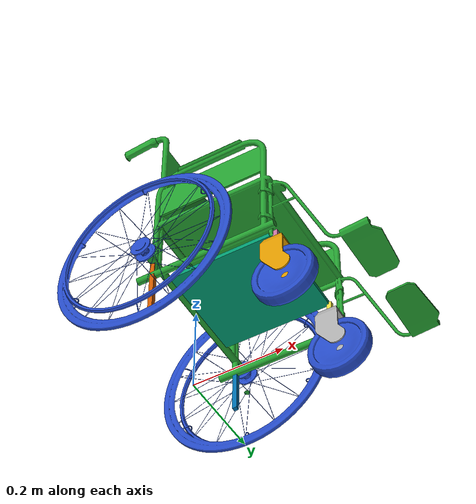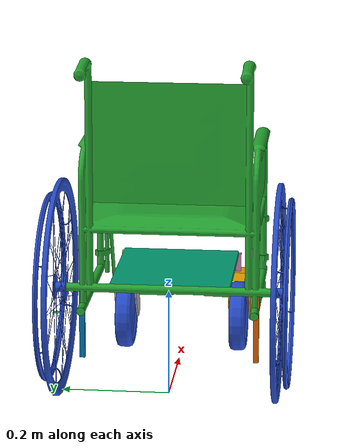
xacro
<?xml version='1.0'?>

<robot name="wheelchair" xmlns:xacro="http://www.ros.org/wiki/xacro" >

  <xacro:property name="legs_width" value="0.01" />
  <xacro:property name="legs_length" value="0.01" />
  <xacro:property name="legs_height" value="0.0354" />
  <xacro:property name="legs_weight" value="0.25" />

  <xacro:property name="main_wheel_length" value="0.0356884" />
  <xacro:property name="main_wheel_radius" value="0.201784" />
  <xacro:property name="main_wheel_weight" value="3.0" />

  <xacro:property name="small_wheel_radius" value="0.068" />
  <xacro:property name="small_wheel_length" value="0.032" />
  <xacro:property name="small_wheel_weight" value="1.5" />

  <xacro:property name="chair_width" value="${2*main_wheel_radius - 0.18}" /> <!-- From front wheel right joint to front wheel left joint -->
  <xacro:property name="chair_length" value="${3/2*main_wheel_radius - 0.052}" /> 	 <!-- From front wheel joint to back wheel joint -->
  <xacro:property name="chair_height" value="0.01" /> 						 <!-- From front wheel joint to head rest -->
  <xacro:property name="chair_weight" value="${3.0+70.0}" />

  <xacro:property name="axle_width" value="0.01" />
  <xacro:property name="axle_length" value="${2*main_wheel_radius}"/>
  <xacro:property name="axle_height" value="0.01" />
  <xacro:property name="axle_weight" value="2.0" />

  <xacro:include filename="$(find wheelchair_description)/urdf/wheelchair.gazebo" />
  <xacro:include filename="$(find wheelchair_description)/urdf/materials.xacro" />
  <xacro:include filename="$(find wheelchair_description)/urdf/macros.xacro" />

  <link name='footprint'>
    <pose xyz="1 0 0" rpy=" 0 0 0"/>
    <visual>
      <origin xyz="0 0 0" rpy=" 0 0 0"/>
    <geometry>
      <box size="0.001 0.001 0.001"/>
    </geometry>
    </visual>
    <visual>
      <origin xyz="0 0 0" rpy="0 0 -3.14"/>
      <geometry>
         <mesh filename="package://wheelchair_description/meshes/wheelchair_chasis.stl" scale="0.01 0.01 0.01"/>
      </geometry>
  </visual>
  </link>

  <link name='axle'>
    <inertial>
      <origin xyz="0 0 0" rpy=" 0 0 0"/>
      <mass value="${axle_weight}"/>
      <box_inertia m="${axle_weight}" x="${axle_width}" y="${axle_length}" z ="${axle_height}" />
    </inertial>
    <collision name='collision'>
      <origin xyz="0 0 0" rpy=" 0 0 0"/>
      <geometry>
        <box size="${axle_width} ${axle_length} ${axle_height}"/>
      </geometry>
    </collision>

    <visual>
      <origin xyz="0 0 0" rpy=" 0 0 0"/>
      <geometry>
        <box size="${axle_width} ${axle_length} ${axle_height}"/>
      </geometry>
    </visual>
  </link>

  <link_joint parent="footprint" child ="axle" xyz="0 0 ${main_wheel_radius}" rpy="0 0 0" type="fixed"/>

  <chassis name="base" xyz="${chair_length/2} 0 0" rpy="0 0 0" m="${chair_weight}" chassisLength="${chair_length}" chassisWidth="${chair_width}" chassisHeight="${chair_height}"/>
  <link_joint parent="axle" child ="base" xyz="0 0 0" rpy="0 0 0" type="fixed"/>

  <chassis name="front_left_leg" xyz="0 0 ${-legs_height/2}" rpy="0 0 0" m="${legs_weight}" chassisLength="${legs_length}" chassisWidth="${legs_width}" chassisHeight="${legs_height}"/>
  <link_joint parent="base" child ="front_left_leg" xyz="${chair_length} ${chair_width/2} 0" rpy="0 0 0" type="fixed"/>
   <chassis name="rear_left_leg" xyz="0 0 ${-(legs_height + 0.1)/2}" rpy="0 0 0" m="${legs_weight}" chassisLength="${legs_length}" chassisWidth="${legs_width}" chassisHeight="${legs_height + 0.1}"/>
  <link_joint parent="base" child ="rear_left_leg" xyz="0 ${chair_width/2 + 0.05} 0" rpy="0 0 0" type="fixed"/>
<chassis name="rear_right_leg" xyz="0 0 ${-(legs_height + 0.1)/2}" rpy="0 0 0" m="${legs_weight}" chassisLength="${legs_length}" chassisWidth="${legs_width}" chassisHeight="${legs_height +0.1}"/>
  <link_joint parent="base" child ="rear_right_leg" xyz="0 ${-chair_width/2 - 0.05} 0" rpy="0 0 0" type="fixed"/>

  <chassis name="front_right_leg" xyz="0 0 ${-legs_height/2}" rpy="0 0 0" m="${legs_weight}" chassisLength="${legs_length}" chassisWidth="${legs_width}" chassisHeight="${legs_height}"/>
  <link_joint parent="base" child ="front_right_leg" xyz="${chair_length} ${-chair_width/2} 0" rpy="0 0 0" type="fixed"/>

  <wheel  lr="front_left_leg_rev" tY="0.02" xyz=" 0 0 0" rpy="0 0 0" wheelWidth="${0.01}" wheelRadius="${legs_width}" wheelMass="${legs_weight}" meshFile="wheelchair_wheel_rev"/>
  <wheel_joint parent="front_left_leg" child ="front_left_leg_rev" xyz="0 0 ${-legs_height}" rpy="0 0 0" axis="0 0 1"/>

  <wheel  lr="front_right_leg_rev" tY="0.02" xyz=" 0 0 0" rpy="0 0 0" wheelWidth="${0.01}" wheelRadius="${legs_width}" wheelMass="${legs_weight}" meshFile="wheelchair_wheel_rev"/>
  <wheel_joint parent="front_right_leg" child ="front_right_leg_rev" xyz="0 0 ${-legs_height}" rpy="0 0 0" axis="0 0 1"/>

  <wheel  lr="rear_left_wheel" tY="0.02" xyz=" 0 0 0" rpy="${-pi/2} 0 0" wheelWidth="${main_wheel_length}" wheelRadius="${main_wheel_radius}" wheelMass="${main_wheel_weight}" meshFile="wheelchair_wheel"/>
  <wheel_joint parent="axle" child ="rear_left_wheel" xyz="0 ${main_wheel_radius} 0" rpy="0 0 0" axis="0 1 0"/>

  <wheel  lr="rear_right_wheel" tY="0.02" xyz=" 0 0 0" rpy="${pi/2} 0 0" wheelWidth="${main_wheel_length}" wheelRadius="${main_wheel_radius}" wheelMass="${main_wheel_weight}" meshFile="wheelchair_wheel"/>
  <wheel_joint parent="axle" child ="rear_right_wheel" xyz="0 ${-main_wheel_radius} 0" rpy="0 0 0" axis="0 1 0"/>

  <wheel  lr="front_left_wheel" tY="0.001" xyz=" 0 0 0" rpy="${pi/2} 0 0" wheelWidth="${small_wheel_length}" wheelRadius="${small_wheel_radius}" wheelMass="${small_wheel_weight}" meshFile="wheelchair_wheel_small"/>
  <wheel_joint parent="front_left_leg_rev" child ="front_left_wheel" xyz="0.017 0 ${-2*small_wheel_radius+0.0377}" rpy="0 0 0" axis="0 1 0"/>

  <wheel  lr="front_right_wheel" tY="0.001" xyz=" 0 0 0" rpy="${pi/2} 0 0" wheelWidth="${small_wheel_length}" wheelRadius="${small_wheel_radius}" wheelMass="${small_wheel_weight}" meshFile="wheelchair_wheel_small"/>
  <wheel_joint parent="front_right_leg_rev" child ="front_right_wheel" xyz="0.017 0 ${-2*small_wheel_radius + 0.0377}" rpy="0 0 0" axis="0 1 0"/>

</robot>

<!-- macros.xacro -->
<robot name="macro" xmlns:xacro="http://www.ros.org/wiki/xacro">

  <xacro:macro name="cylinder_inertia" params="m r h">
    <inertia  ixx="${m*(3*r*r+h*h)/12}" ixy = "0" ixz = "0"
      iyy="${m*(3*r*r+h*h)/12}" iyz = "0"
      izz="${m*r*r/2}"
    />
  </xacro:macro>

  <xacro:macro name="box_inertia" params="m x y z">
    <inertia  ixx="${m*(y*y+z*z)/12}" ixy = "0" ixz = "0"
      iyy="${m*(x*x+z*z)/12}" iyz = "0"
      izz="${m*(x*x+z*z)/12}"
    />
  </xacro:macro>

  <xacro:macro name="sphere_inertia" params="m r">
    <inertia  ixx="${2*m*r*r/5}" ixy = "0" ixz = "0"
      iyy="${2*m*r*r/5}" iyz = "0"
      izz="${2*m*r*r/5}"
    />
  </xacro:macro>

  <xacro:macro name="wheel_joint" params="parent child xyz rpy axis">
    <joint type="continuous" name="${parent}_${child}_joint">
      <origin xyz="${xyz}" rpy="${rpy}"/>
      <child link="${child}"/>
      <parent link="${parent}"/>
      <axis xyz="${axis}" rpy="0 0 0"/>
      <limit effort="100" velocity="100"/>
      <joint_properties damping="0.01" friction="0.5"/>
    </joint>
  </xacro:macro>

  <xacro:macro name="wheel" params="lr tY xyz rpy wheelWidth wheelRadius wheelMass meshFile">
    <link name="${lr}">
      <collision name="${lr}_collision">
        <origin xyz="${xyz}" rpy="${rpy}" />
        <geometry>
          <mesh filename="package://wheelchair_description/meshes/${meshFile}.stl" scale="0.01 0.01 0.01"/>
        </geometry>
      </collision>

      <visual name="${lr}_visual_mesh">
        <origin xyz="${xyz}" rpy="${rpy}" />

        <geometry>
          <mesh filename="package://wheelchair_description/meshes/${meshFile}.stl" scale="0.01 0.01 0.01"/>
        </geometry>
      </visual>
      <inertial name="${lr}_visual_intertial">
        <origin xyz="0 0 0" rpy="0 ${pi/2} ${pi/2}" />
        <mass value="${wheelMass}"/>
        <cylinder_inertia m="${wheelMass}" r="${wheelRadius}" h="${wheelWidth}"/>
      </inertial>
    </link>
  </xacro:macro>
  <xacro:macro name="wheel_" params="lr tY xyz rpy wheelWidth wheelRadius wheelMass meshFile">
    <link name="${lr}">

      <visual name="${lr}_visual_mesh">
        <origin xyz="${xyz}" rpy="${rpy}" />
        <geometry>
          <mesh filename="package://wheelchair_description/meshes/${meshFile}.stl" scale="0.01 0.01 0.01"/>
        </geometry>
      </visual>
      <inertial name="${lr}_visual_intertial">
        <origin xyz="0 0 0" rpy="0 ${pi/2} ${pi/2}" />
        <mass value="${wheelMass}"/>
        <cylinder_inertia m="${wheelMass}" r="${wheelRadius}" h="${wheelWidth}"/>
      </inertial>
    </link>
  </xacro:macro>

<xacro:macro name="sphere_" params="name xyz rpy m r">
    <link name="${name}">
      <collision name='${name}_collision'>
        <geometry>
        <sphere radius="${r}"/>
	 </geometry>
	<surface>
	<friction>
	  <ode>
	    <mu>0.5</mu>
	    <mu2>0.5</mu2>
	    <slip1>0.0</slip1>
	    <slip2>0.0</slip2>
	  </ode>
	</friction>
	</surface>

      </collision>
      <visual name='${name}_visual'>
        <origin xyz="${xyz}" rpy="${rpy}" />
         <geometry>
            <sphere radius="${r}"/>
        </geometry>
      </visual>
      <inertial name="${name}_intertial">
        <origin xyz="${xyz}" rpy="${rpy}" />
        <mass value="${m}"/>
        <sphere_inertia m="${m}" r ="${r}" />
      </inertial>
    </link>
  </xacro:macro>

<xacro:macro name="chassis" params="name xyz rpy m chassisLength chassisWidth chassisHeight">
    <link name="${name}">
      <collision name='${name}_chassis_collision'>
        <geometry>
          <box size="${chassisLength} ${chassisWidth} ${chassisHeight}"/>
        </geometry>
      </collision>
      <visual name='${name}_visual'>
        <origin xyz="${xyz}" rpy="${rpy}" />
          <geometry>
            <box size="${chassisLength} ${chassisWidth} ${chassisHeight}"/>
        </geometry>
      </visual>
      <inertial name="${name}_intertial">
        <origin xyz="${xyz}" rpy="${rpy}" />
        <mass value="${m}"/>
        <box_inertia m="${m}" x="${chassisLength}" y="${chassisWidth}" z ="${chassisHeight}" />
      </inertial>
    </link>
  </xacro:macro>
  <xacro:macro name="link_joint" params="parent child xyz rpy type">
    <joint type="${type}" name="${parent}_${child}_joint">
      <origin xyz="${xyz}" rpy="${rpy}"/>
      <parent link="${parent}"/>
      <child link="${child}"/>

    </joint>
  </xacro:macro>
  <xacro:macro name="link_" params="name xyz rpy m length width height">
      <link name="${name}">
        <collision name='${name}_link_collision'>
          <geometry>
            <box size="${length} ${width} ${height}"/>
          </geometry>
        </collision>
        <visual name='${name}_visual'>
          <origin xyz="${xyz}" rpy="${rpy}" />
            <geometry>
              <box size="${length} ${width} ${height}"/>
          </geometry>
        </visual>
        <inertial name="${name}_intertial">
          <origin xyz="${xyz}" rpy="${rpy}" />
          <mass value="${m}"/>
          <box_inertia m="${m}" x="${length}" y="${width}" z ="${height}" />
        </inertial>
      </link>
    </xacro:macro>
    <xacro:macro name="link_joint" params="parent child xyz rpy type">
      <joint type="${type}" name="${parent}_${child}_joint">
        <origin xyz="${xyz}" rpy="${rpy}"/>
        <parent link="${parent}"/>
        <child link="${child}"/>

      </joint>
    </xacro:macro>

</robot>
